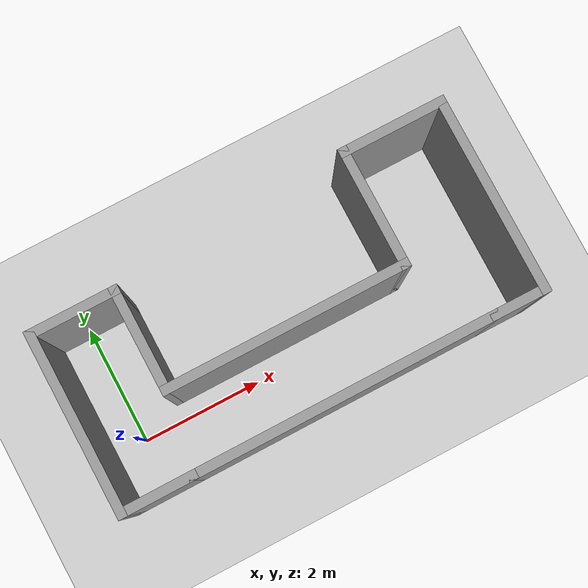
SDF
<sdf version="1.6">
 <world name="default">
  <light name="sun" type="directional">
   <pose>0 0 10 0 -0 0</pose>
   <diffuse>0.8 0.8 0.8 1</diffuse>
   <specular>0.2 0.2 0.2 1</specular>
   <attenuation>
    <range>1000</range>
    <constant>0.9</constant>
    <linear>0.01</linear>
    <quadratic>0.001</quadratic>
   </attenuation>
   <direction>-0.5 0.1 -0.9</direction>
  </light>
  <model name="ground_plane">
   <static>1</static>
   <link name="link">
    <collision name="collision">
     <geometry><plane><normal>0 0 1</normal><size>100 100</size></plane></geometry>
     <surface>
      <contact><collide_bitmask>65535</collide_bitmask></contact>
      <friction><ode><mu>100</mu><mu2>50</mu2></ode></friction>
     </surface>
    </collision>
    <visual name="visual">
     <cast_shadows>0</cast_shadows>
     <geometry><plane><normal>0 0 1</normal><size>100 100</size></plane></geometry>
     <material>
      <script><uri>file://media/materials/scripts/gazebo.material</uri><name>Gazebo/Grey</name></script>
     </material>
    </visual>
   </link>
  </model>
  <gravity>0 0 -9.8</gravity>
  <magnetic_field>6e-06 2.3e-05 -4.2e-05</magnetic_field>
  <atmosphere type="adiabatic"/>
  <physics name="default_physics" default="0" type="ode">
   <max_step_size>0.001</max_step_size>
   <real_time_factor>1</real_time_factor>
   <real_time_update_rate>1000</real_time_update_rate>
  </physics>
  <scene><ambient>0.4 0.4 0.4 1</ambient><background>0.7 0.7 0.7 1</background><shadows>1</shadows></scene>
  <spherical_coordinates>
   <surface_model>EARTH_WGS84</surface_model>
   <latitude_deg>0</latitude_deg>
   <longitude_deg>0</longitude_deg>
   <elevation>0</elevation>
   <heading_deg>0</heading_deg>
  </spherical_coordinates>
  <model name="fhome">
   <pose>2.8122 0.643385 0 0 -0 0</pose>
   <link name="Wall_0">
    <collision name="Wall_0_Collision">
     <geometry><box><size>4 0.15 2.5</size></box></geometry>
     <pose>0 0 1.25 0 -0 0</pose>
    </collision>
    <visual name="Wall_0_Visual">
     <pose>0 0 1.25 0 -0 0</pose>
     <geometry><box><size>4 0.15 2.5</size></box></geometry>
     <material>
      <script><uri>file://media/materials/scripts/gazebo.material</uri><name>Gazebo/Grey</name></script>
      <ambient>1 1 1 1</ambient>
     </material>
     <meta><layer>0</layer></meta>
    </visual>
    <pose>-0.125026 -0.299907 0 0 -0 0</pose>
   </link>
   <link name="Wall_11">
    <collision name="Wall_11_Collision">
     <geometry><box><size>0.95961 0.15 2.5</size></box></geometry>
     <pose>0 0 1.25 0 -0 0</pose>
    </collision>
    <visual name="Wall_11_Visual">
     <pose>0 0 1.25 0 -0 0</pose>
     <geometry><box><size>0.95961 0.15 2.5</size></box></geometry>
     <material>
      <script><uri>file://media/materials/scripts/gazebo.material</uri><name>Gazebo/Grey</name></script>
      <ambient>1 1 1 1</ambient>
     </material>
     <meta><layer>0</layer></meta>
    </visual>
    <pose>2.99517 -1.5489 0 0 0 -0.00248</pose>
   </link>
   <link name="Wall_13">
    <collision name="Wall_13_Collision">
     <geometry><box><size>1.75 0.15 2.5</size></box></geometry>
     <pose>0 0 1.25 0 -0 0</pose>
    </collision>
    <visual name="Wall_13_Visual">
     <pose>0 0 1.25 0 -0 0</pose>
     <geometry><box><size>1.75 0.15 2.5</size></box></geometry>
     <material>
      <script><uri>file://media/materials/scripts/gazebo.material</uri><name>Gazebo/Grey</name></script>
      <ambient>1 1 1 1</ambient>
     </material>
     <meta><layer>0</layer></meta>
    </visual>
    <pose>-2.05003 0.500093 0 0 -0 1.5708</pose>
   </link>
   <link name="Wall_14">
    <collision name="Wall_14_Collision">
     <geometry><box><size>1.5 0.15 2.5</size></box></geometry>
     <pose>0 0 1.25 0 -0 0</pose>
    </collision>
    <visual name="Wall_14_Visual">
     <pose>0 0 1.25 0 -0 0</pose>
     <geometry><box><size>1.5 0.15 2.5</size></box></geometry>
     <material>
      <script><uri>file://media/materials/scripts/gazebo.material</uri><name>Gazebo/Grey</name></script>
      <ambient>1 1 1 1</ambient>
     </material>
     <meta><layer>0</layer></meta>
    </visual>
    <pose>-2.72503 1.30009 0 0 -0 3.14159</pose>
   </link>
   <link name="Wall_2">
    <collision name="Wall_2_Collision">
     <geometry><box><size>5 0.15 2.5</size></box></geometry>
     <pose>0 0 1.25 0 -0 0</pose>
    </collision>
    <visual name="Wall_2_Visual">
     <pose>0 0 1.25 0 -0 0</pose>
     <geometry><box><size>5 0.15 2.5</size></box></geometry>
     <material>
      <script><uri>file://media/materials/scripts/gazebo.material</uri><name>Gazebo/Grey</name></script>
      <ambient>1 1 1 1</ambient>
     </material>
     <meta><layer>0</layer></meta>
    </visual>
    <pose>0.152141 -1.5479 0 0 -0 0</pose>
   </link>
   <link name="Wall_20">
    <collision name="Wall_20_Collision">
     <geometry><box><size>3 0.15 2.5</size></box></geometry>
     <pose>0 0 1.25 0 -0 0</pose>
    </collision>
    <visual name="Wall_20_Visual">
     <pose>0 0 1.25 0 -0 0</pose>
     <geometry><box><size>3 0.15 2.5</size></box></geometry>
     <material>
      <script><uri>file://media/materials/scripts/gazebo.material</uri><name>Gazebo/Grey</name></script>
      <ambient>1 1 1 1</ambient>
     </material>
     <meta><layer>0</layer></meta>
    </visual>
    <pose>-3.40003 -0.124907 0 0 0 -1.5708</pose>
   </link>
   <link name="Wall_22">
    <collision name="Wall_22_Collision">
     <geometry><box><size>1.27717 0.15 2.5</size></box></geometry>
     <pose>0 0 1.25 0 -0 0</pose>
    </collision>
    <visual name="Wall_22_Visual">
     <pose>0 0 1.25 0 -0 0</pose>
     <geometry><box><size>1.27717 0.15 2.5</size></box></geometry>
     <material>
      <script><uri>file://media/materials/scripts/gazebo.material</uri><name>Gazebo/Grey</name></script>
      <ambient>1 1 1 1</ambient>
     </material>
     <meta><layer>0</layer></meta>
    </visual>
    <pose>-2.83644 -1.5489 0 0 0 -3.13981</pose>
   </link>
   <link name="Wall_4">
    <collision name="Wall_4_Collision">
     <geometry><box><size>2 0.15 2.5</size></box></geometry>
     <pose>0 0 1.25 0 -0 0</pose>
    </collision>
    <visual name="Wall_4_Visual">
     <pose>0 0 1.25 0 -0 0</pose>
     <geometry><box><size>2 0.15 2.5</size></box></geometry>
     <material>
      <script><uri>file://media/materials/scripts/gazebo.material</uri><name>Gazebo/Grey</name></script>
      <ambient>1 1 1 1</ambient>
     </material>
     <meta><layer>0</layer></meta>
    </visual>
    <pose>1.79997 0.625093 0 0 -0 1.5708</pose>
   </link>
   <link name="Wall_5">
    <collision name="Wall_5_Collision">
     <geometry><box><size>1.75 0.15 2.5</size></box></geometry>
     <pose>0 0 1.25 0 -0 0</pose>
    </collision>
    <visual name="Wall_5_Visual">
     <pose>0 0 1.25 0 -0 0</pose>
     <geometry><box><size>1.75 0.15 2.5</size></box></geometry>
     <material>
      <script><uri>file://media/materials/scripts/gazebo.material</uri><name>Gazebo/Grey</name></script>
      <ambient>1 1 1 1</ambient>
     </material>
     <meta><layer>0</layer></meta>
    </visual>
    <pose>2.59997 1.55009 0 0 -0 0</pose>
   </link>
   <link name="Wall_6">
    <collision name="Wall_6_Collision">
     <geometry><box><size>3.25 0.15 2.5</size></box></geometry>
     <pose>0 0 1.25 0 -0 0</pose>
    </collision>
    <visual name="Wall_6_Visual">
     <pose>0 0 1.25 0 -0 0</pose>
     <geometry><box><size>3.25 0.15 2.5</size></box></geometry>
     <material>
      <script><uri>file://media/materials/scripts/gazebo.material</uri><name>Gazebo/Grey</name></script>
      <ambient>1 1 1 1</ambient>
     </material>
     <meta><layer>0</layer></meta>
    </visual>
    <pose>3.39997 9.3e-05 0 0 0 -1.5708</pose>
   </link>
   <static>1</static>
  </model>
 </world>
</sdf>
